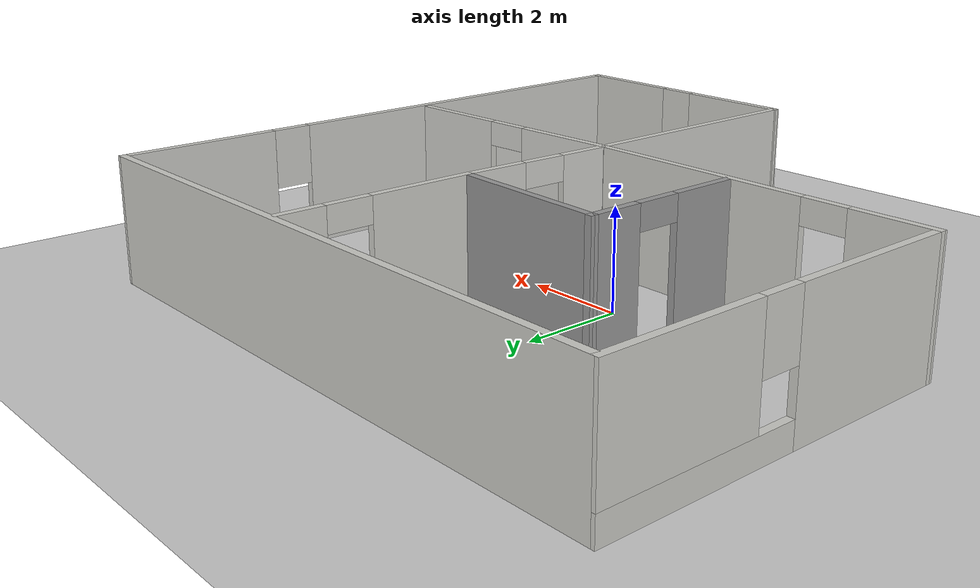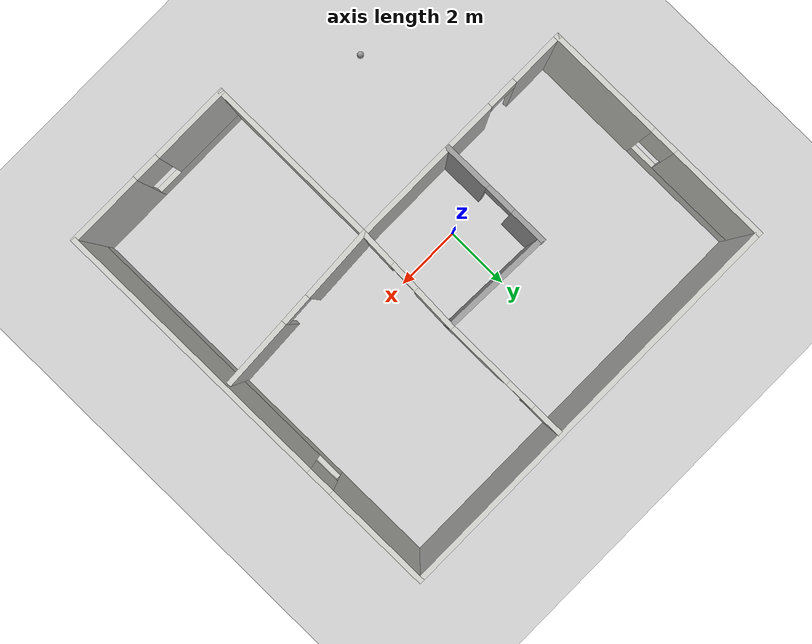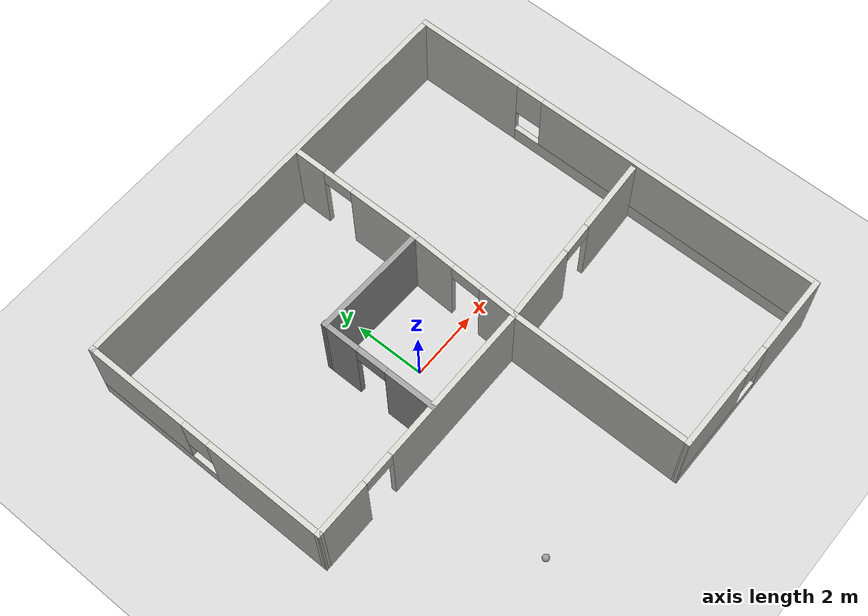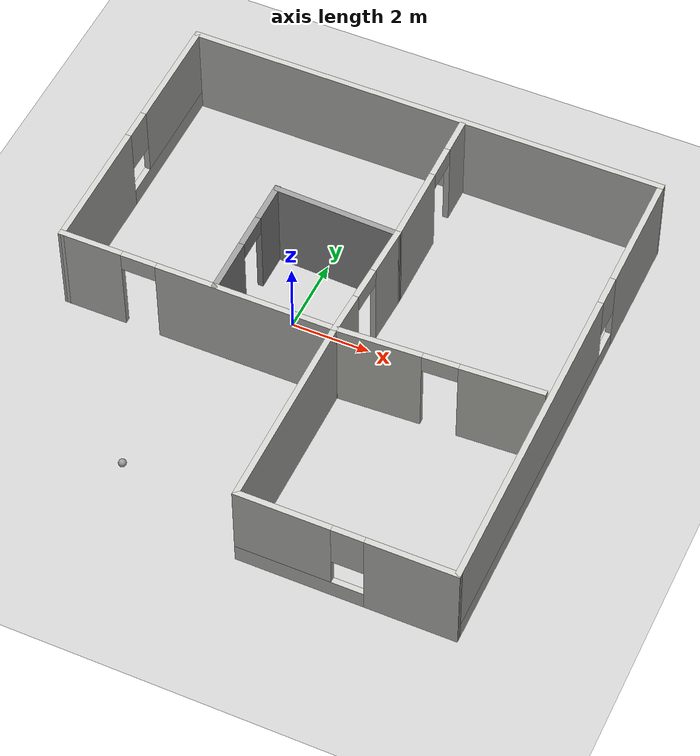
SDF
<sdf version="1.7">
 <world name="default">
  <light name="sun" type="directional">
   <pose>0 0 10 0 -0 0</pose>
   <diffuse>0.8 0.8 0.8 1</diffuse>
   <specular>0.2 0.2 0.2 1</specular>
   <attenuation>
    <range>1000</range>
    <constant>0.9</constant>
    <linear>0.01</linear>
    <quadratic>0.001</quadratic>
   </attenuation>
   <direction>-0.5 0.1 -0.9</direction>
   <spot><inner_angle>0</inner_angle><outer_angle>0</outer_angle><falloff>0</falloff></spot>
  </light>
  <model name="ground_plane">
   <static>1</static>
   <link name="link">
    <collision name="collision">
     <geometry><plane><normal>0 0 1</normal><size>100 100</size></plane></geometry>
     <surface>
      <contact><collide_bitmask>65535</collide_bitmask></contact>
      <friction><ode><mu>100</mu><mu2>50</mu2></ode></friction>
     </surface>
    </collision>
    <visual name="visual">
     <cast_shadows>0</cast_shadows>
     <geometry><plane><normal>0 0 1</normal><size>100 100</size></plane></geometry>
     <material>
      <script><uri>file://media/materials/scripts/gazebo.material</uri><name>Gazebo/Grey</name></script>
     </material>
    </visual>
   </link>
  </model>
  <gravity>0 0 -9.8</gravity>
  <magnetic_field>6e-06 2.3e-05 -4.2e-05</magnetic_field>
  <atmosphere type="adiabatic"/>
  <physics type="ode">
   <max_step_size>0.001</max_step_size>
   <real_time_factor>1</real_time_factor>
   <real_time_update_rate>1000</real_time_update_rate>
  </physics>
  <scene><ambient>0.4 0.4 0.4 1</ambient><background>0.7 0.7 0.7 1</background><shadows>1</shadows></scene>
  <spherical_coordinates>
   <surface_model>EARTH_WGS84</surface_model>
   <latitude_deg>0</latitude_deg>
   <longitude_deg>0</longitude_deg>
   <elevation>0</elevation>
   <heading_deg>0</heading_deg>
  </spherical_coordinates>
  <model name="Appt">
   <pose>0.93929 -0.505401 0 0 -0 0</pose>
   <link name="Wall_10">
    <pose>-6.20936 2.58411 0 0 -0 1.57018</pose>
    <visual name="Wall_10_Visual_0">
     <pose>-1.92753 0 1.25 0 -0 0</pose>
     <geometry><box><size>3.50674 0.15 2.5</size></box></geometry>
     <material>
      <script><uri>file://media/materials/scripts/gazebo.material</uri><name>Gazebo/CeilingTiled</name></script>
      <ambient>1 1 1 1</ambient>
     </material>
     <meta><layer>0</layer></meta>
    </visual>
    <collision name="Wall_10_Collision_0">
     <geometry><box><size>3.50674 0.15 2.5</size></box></geometry>
     <pose>-1.92753 0 1.25 0 -0 0</pose>
    </collision>
    <visual name="Wall_10_Visual_1">
     <pose>1.75337 0 0.25 0 -0 0</pose>
     <geometry><box><size>3.85506 0.15 0.5</size></box></geometry>
     <material>
      <script><uri>file://media/materials/scripts/gazebo.material</uri><name>Gazebo/CeilingTiled</name></script>
      <ambient>1 1 1 1</ambient>
     </material>
     <meta><layer>0</layer></meta>
    </visual>
    <collision name="Wall_10_Collision_1">
     <geometry><box><size>3.85506 0.15 0.5</size></box></geometry>
     <pose>1.75337 0 0.25 0 -0 0</pose>
    </collision>
    <visual name="Wall_10_Visual_2">
     <pose>2.15337 0 1.5 0 -0 0</pose>
     <geometry><box><size>3.05506 0.15 2</size></box></geometry>
     <material>
      <script><uri>file://media/materials/scripts/gazebo.material</uri><name>Gazebo/CeilingTiled</name></script>
      <ambient>1 1 1 1</ambient>
     </material>
     <meta><layer>0</layer></meta>
    </visual>
    <collision name="Wall_10_Collision_2">
     <geometry><box><size>3.05506 0.15 2</size></box></geometry>
     <pose>2.15337 0 1.5 0 -0 0</pose>
    </collision>
    <visual name="Wall_10_Visual_3">
     <pose>0.225842 0 1.9 0 -0 0</pose>
     <geometry><box><size>0.8 0.15 1.2</size></box></geometry>
     <material>
      <script><uri>file://media/materials/scripts/gazebo.material</uri><name>Gazebo/CeilingTiled</name></script>
      <ambient>1 1 1 1</ambient>
     </material>
     <meta><layer>0</layer></meta>
    </visual>
    <collision name="Wall_10_Collision_3">
     <geometry><box><size>0.8 0.15 1.2</size></box></geometry>
     <pose>0.225842 0 1.9 0 -0 0</pose>
    </collision>
   </link>
   <link name="Wall_13">
    <pose>1.02161 4.14402 0 0 0 -1.5708</pose>
    <visual name="Wall_13_Visual_0">
     <pose>-1.52209 0 1.25 0 -0 0</pose>
     <geometry><box><size>0.955813 0.15 2.5</size></box></geometry>
     <material>
      <script><uri>file://media/materials/scripts/gazebo.material</uri><name>Gazebo/CeilingTiled</name></script>
      <ambient>1 1 1 1</ambient>
     </material>
     <meta><layer>0</layer></meta>
    </visual>
    <collision name="Wall_13_Collision_0">
     <geometry><box><size>0.955813 0.15 2.5</size></box></geometry>
     <pose>-1.52209 0 1.25 0 -0 0</pose>
    </collision>
    <visual name="Wall_13_Visual_1">
     <pose>0.927906 0 1.25 0 -0 0</pose>
     <geometry><box><size>2.14419 0.15 2.5</size></box></geometry>
     <material>
      <script><uri>file://media/materials/scripts/gazebo.material</uri><name>Gazebo/CeilingTiled</name></script>
      <ambient>1 1 1 1</ambient>
     </material>
     <meta><layer>0</layer></meta>
    </visual>
    <collision name="Wall_13_Collision_1">
     <geometry><box><size>2.14419 0.15 2.5</size></box></geometry>
     <pose>0.927906 0 1.25 0 -0 0</pose>
    </collision>
    <visual name="Wall_13_Visual_2">
     <pose>-0.594187 0 2.25 0 -0 0</pose>
     <geometry><box><size>0.9 0.15 0.5</size></box></geometry>
     <material>
      <script><uri>file://media/materials/scripts/gazebo.material</uri><name>Gazebo/CeilingTiled</name></script>
      <ambient>1 1 1 1</ambient>
     </material>
     <meta><layer>0</layer></meta>
    </visual>
    <collision name="Wall_13_Collision_2">
     <geometry><box><size>0.9 0.15 0.5</size></box></geometry>
     <pose>-0.594187 0 2.25 0 -0 0</pose>
    </collision>
   </link>
   <link name="Wall_14">
    <collision name="Wall_14_Collision">
     <geometry><box><size>3.36614 0.15 2.5</size></box></geometry>
     <pose>0 0 1.25 0 -0 0</pose>
    </collision>
    <visual name="Wall_14_Visual">
     <pose>0 0 1.25 0 -0 0</pose>
     <geometry><box><size>3.36614 0.15 2.5</size></box></geometry>
     <material>
      <script><uri>file://media/materials/scripts/gazebo.material</uri><name>Gazebo/Grey</name></script>
      <ambient>1 1 1 1</ambient>
     </material>
     <meta><layer>0</layer></meta>
    </visual>
    <pose>-0.585241 2.27588 0 0 -0 3.10623</pose>
   </link>
   <link name="Wall_15">
    <pose>-2.19371 0.673077 0 0 0 -1.57177</pose>
    <visual name="Wall_15_Visual_0">
     <pose>-1.18829 0 1.25 0 -0 0</pose>
     <geometry><box><size>1.11546 0.15 2.5</size></box></geometry>
     <material>
      <script><uri>file://media/materials/scripts/gazebo.material</uri><name>Gazebo/Grey</name></script>
      <ambient>1 1 1 1</ambient>
     </material>
     <meta><layer>0</layer></meta>
    </visual>
    <collision name="Wall_15_Collision_0">
     <geometry><box><size>1.11546 0.15 2.5</size></box></geometry>
     <pose>-1.18829 0 1.25 0 -0 0</pose>
    </collision>
    <visual name="Wall_15_Visual_1">
     <pose>1.00773 0 1.25 0 -0 0</pose>
     <geometry><box><size>1.47659 0.15 2.5</size></box></geometry>
     <material>
      <script><uri>file://media/materials/scripts/gazebo.material</uri><name>Gazebo/Grey</name></script>
      <ambient>1 1 1 1</ambient>
     </material>
     <meta><layer>0</layer></meta>
    </visual>
    <collision name="Wall_15_Collision_1">
     <geometry><box><size>1.47659 0.15 2.5</size></box></geometry>
     <pose>1.00773 0 1.25 0 -0 0</pose>
    </collision>
    <visual name="Wall_15_Visual_2">
     <pose>-0.180563 0 2.25 0 -0 0</pose>
     <geometry><box><size>0.9 0.15 0.5</size></box></geometry>
     <material>
      <script><uri>file://media/materials/scripts/gazebo.material</uri><name>Gazebo/Grey</name></script>
      <ambient>1 1 1 1</ambient>
     </material>
     <meta><layer>0</layer></meta>
    </visual>
    <collision name="Wall_15_Collision_2">
     <geometry><box><size>0.9 0.15 0.5</size></box></geometry>
     <pose>-0.180563 0 2.25 0 -0 0</pose>
    </collision>
   </link>
   <link name="Wall_17">
    <pose>0.955011 0.598616 0 0 -0 1.52972</pose>
    <visual name="Wall_17_Visual_0">
     <pose>-1.12377 0 1.25 0 -0 0</pose>
     <geometry><box><size>1.146 0.15 2.5</size></box></geometry>
     <material>
      <script><uri>file://media/materials/scripts/gazebo.material</uri><name>Gazebo/CeilingTiled</name></script>
      <ambient>1 1 1 1</ambient>
     </material>
     <meta><layer>0</layer></meta>
    </visual>
    <collision name="Wall_17_Collision_0">
     <geometry><box><size>1.146 0.15 2.5</size></box></geometry>
     <pose>-1.12377 0 1.25 0 -0 0</pose>
    </collision>
    <visual name="Wall_17_Visual_1">
     <pose>1.023 0 1.25 0 -0 0</pose>
     <geometry><box><size>1.34755 0.15 2.5</size></box></geometry>
     <material>
      <script><uri>file://media/materials/scripts/gazebo.material</uri><name>Gazebo/CeilingTiled</name></script>
      <ambient>1 1 1 1</ambient>
     </material>
     <meta><layer>0</layer></meta>
    </visual>
    <collision name="Wall_17_Collision_1">
     <geometry><box><size>1.34755 0.15 2.5</size></box></geometry>
     <pose>1.023 0 1.25 0 -0 0</pose>
    </collision>
    <visual name="Wall_17_Visual_2">
     <pose>-0.100773 0 2.25 0 -0 0</pose>
     <geometry><box><size>0.9 0.15 0.5</size></box></geometry>
     <material>
      <script><uri>file://media/materials/scripts/gazebo.material</uri><name>Gazebo/CeilingTiled</name></script>
      <ambient>1 1 1 1</ambient>
     </material>
     <meta><layer>0</layer></meta>
    </visual>
    <collision name="Wall_17_Collision_2">
     <geometry><box><size>0.9 0.15 0.5</size></box></geometry>
     <pose>-0.100773 0 2.25 0 -0 0</pose>
    </collision>
   </link>
   <link name="Wall_19">
    <pose>3.44003 -0.90077 0 0 -0 0.047394</pose>
    <visual name="Wall_19_Visual_0">
     <pose>-1.50963 0 1.25 0 -0 0</pose>
     <geometry><box><size>2.23971 0.15 2.5</size></box></geometry>
     <material>
      <script><uri>file://media/materials/scripts/gazebo.material</uri><name>Gazebo/CeilingTiled</name></script>
      <ambient>1 1 1 1</ambient>
     </material>
     <meta><layer>0</layer></meta>
    </visual>
    <collision name="Wall_19_Collision_0">
     <geometry><box><size>2.23971 0.15 2.5</size></box></geometry>
     <pose>-1.50963 0 1.25 0 -0 0</pose>
    </collision>
    <visual name="Wall_19_Visual_1">
     <pose>1.56985 0 1.25 0 -0 0</pose>
     <geometry><box><size>2.11927 0.15 2.5</size></box></geometry>
     <material>
      <script><uri>file://media/materials/scripts/gazebo.material</uri><name>Gazebo/CeilingTiled</name></script>
      <ambient>1 1 1 1</ambient>
     </material>
     <meta><layer>0</layer></meta>
    </visual>
    <collision name="Wall_19_Collision_1">
     <geometry><box><size>2.11927 0.15 2.5</size></box></geometry>
     <pose>1.56985 0 1.25 0 -0 0</pose>
    </collision>
    <visual name="Wall_19_Visual_2">
     <pose>0.060219 0 2.25 0 -0 0</pose>
     <geometry><box><size>0.9 0.15 0.5</size></box></geometry>
     <material>
      <script><uri>file://media/materials/scripts/gazebo.material</uri><name>Gazebo/CeilingTiled</name></script>
      <ambient>1 1 1 1</ambient>
     </material>
     <meta><layer>0</layer></meta>
    </visual>
    <collision name="Wall_19_Collision_2">
     <geometry><box><size>0.9 0.15 0.5</size></box></geometry>
     <pose>0.060219 0 2.25 0 -0 0</pose>
    </collision>
   </link>
   <link name="Wall_5">
    <collision name="Wall_5_Collision">
     <geometry><box><size>12.5 0.15 2.5</size></box></geometry>
     <pose>0 0 1.25 0 -0 0</pose>
    </collision>
    <visual name="Wall_5_Visual">
     <pose>0 0 1.25 0 -0 0</pose>
     <geometry><box><size>12.5 0.15 2.5</size></box></geometry>
     <material>
      <script><uri>file://media/materials/scripts/gazebo.material</uri><name>Gazebo/CeilingTiled</name></script>
      <ambient>1 1 1 1</ambient>
     </material>
     <meta><layer>0</layer></meta>
    </visual>
    <pose>-0.001876 6.19001 0 0 -0 0</pose>
   </link>
   <link name="Wall_6">
    <pose>6.19226 0.015006 0 0 0 -1.5677</pose>
    <visual name="Wall_6_Visual_0">
     <pose>-4.62763 0 1.25 0 -0 0</pose>
     <geometry><box><size>3.24479 0.15 2.5</size></box></geometry>
     <material>
      <script><uri>file://media/materials/scripts/gazebo.material</uri><name>Gazebo/CeilingTiled</name></script>
      <ambient>1 1 1 1</ambient>
     </material>
     <meta><layer>0</layer></meta>
    </visual>
    <collision name="Wall_6_Collision_0">
     <geometry><box><size>3.24479 0.15 2.5</size></box></geometry>
     <pose>-4.62763 0 1.25 0 -0 0</pose>
    </collision>
    <visual name="Wall_6_Visual_1">
     <pose>1.6224 0 0.25 0 -0 0</pose>
     <geometry><box><size>9.25526 0.15 0.5</size></box></geometry>
     <material>
      <script><uri>file://media/materials/scripts/gazebo.material</uri><name>Gazebo/CeilingTiled</name></script>
      <ambient>1 1 1 1</ambient>
     </material>
     <meta><layer>0</layer></meta>
    </visual>
    <collision name="Wall_6_Collision_1">
     <geometry><box><size>9.25526 0.15 0.5</size></box></geometry>
     <pose>1.6224 0 0.25 0 -0 0</pose>
    </collision>
    <visual name="Wall_6_Visual_2">
     <pose>2.0224 0 1.5 0 -0 0</pose>
     <geometry><box><size>8.45527 0.15 2</size></box></geometry>
     <material>
      <script><uri>file://media/materials/scripts/gazebo.material</uri><name>Gazebo/CeilingTiled</name></script>
      <ambient>1 1 1 1</ambient>
     </material>
     <meta><layer>0</layer></meta>
    </visual>
    <collision name="Wall_6_Collision_2">
     <geometry><box><size>8.45527 0.15 2</size></box></geometry>
     <pose>2.0224 0 1.5 0 -0 0</pose>
    </collision>
    <visual name="Wall_6_Visual_3">
     <pose>-2.60523 0 1.9 0 -0 0</pose>
     <geometry><box><size>0.8 0.15 1.2</size></box></geometry>
     <material>
      <script><uri>file://media/materials/scripts/gazebo.material</uri><name>Gazebo/CeilingTiled</name></script>
      <ambient>1 1 1 1</ambient>
     </material>
     <meta><layer>0</layer></meta>
    </visual>
    <collision name="Wall_6_Collision_3">
     <geometry><box><size>0.8 0.15 1.2</size></box></geometry>
     <pose>-2.60523 0 1.9 0 -0 0</pose>
    </collision>
   </link>
   <link name="Wall_7">
    <pose>3.5364 -6.19024 0 0 -0 3.14159</pose>
    <visual name="Wall_7_Visual_0">
     <pose>-1.60305 0 1.25 0 -0 0</pose>
     <geometry><box><size>2.2939 0.15 2.5</size></box></geometry>
     <material>
      <script><uri>file://media/materials/scripts/gazebo.material</uri><name>Gazebo/CeilingTiled</name></script>
      <ambient>1 1 1 1</ambient>
     </material>
     <meta><layer>0</layer></meta>
    </visual>
    <collision name="Wall_7_Collision_0">
     <geometry><box><size>2.2939 0.15 2.5</size></box></geometry>
     <pose>-1.60305 0 1.25 0 -0 0</pose>
    </collision>
    <visual name="Wall_7_Visual_1">
     <pose>1.14695 0 0.25 0 -0 0</pose>
     <geometry><box><size>3.2061 0.15 0.5</size></box></geometry>
     <material>
      <script><uri>file://media/materials/scripts/gazebo.material</uri><name>Gazebo/CeilingTiled</name></script>
      <ambient>1 1 1 1</ambient>
     </material>
     <meta><layer>0</layer></meta>
    </visual>
    <collision name="Wall_7_Collision_1">
     <geometry><box><size>3.2061 0.15 0.5</size></box></geometry>
     <pose>1.14695 0 0.25 0 -0 0</pose>
    </collision>
    <visual name="Wall_7_Visual_2">
     <pose>1.54695 0 1.5 0 -0 0</pose>
     <geometry><box><size>2.4061 0.15 2</size></box></geometry>
     <material>
      <script><uri>file://media/materials/scripts/gazebo.material</uri><name>Gazebo/CeilingTiled</name></script>
      <ambient>1 1 1 1</ambient>
     </material>
     <meta><layer>0</layer></meta>
    </visual>
    <collision name="Wall_7_Collision_2">
     <geometry><box><size>2.4061 0.15 2</size></box></geometry>
     <pose>1.54695 0 1.5 0 -0 0</pose>
    </collision>
    <visual name="Wall_7_Visual_3">
     <pose>-0.056097 0 1.9 0 -0 0</pose>
     <geometry><box><size>0.8 0.15 1.2</size></box></geometry>
     <material>
      <script><uri>file://media/materials/scripts/gazebo.material</uri><name>Gazebo/CeilingTiled</name></script>
      <ambient>1 1 1 1</ambient>
     </material>
     <meta><layer>0</layer></meta>
    </visual>
    <collision name="Wall_7_Collision_3">
     <geometry><box><size>0.8 0.15 1.2</size></box></geometry>
     <pose>-0.056097 0 1.9 0 -0 0</pose>
    </collision>
   </link>
   <link name="Wall_8">
    <collision name="Wall_8_Collision">
     <geometry><box><size>5.28827 0.15 2.5</size></box></geometry>
     <pose>0 0 1.25 0 -0 0</pose>
    </collision>
    <visual name="Wall_8_Visual">
     <pose>0 0 1.25 0 -0 0</pose>
     <geometry><box><size>5.28827 0.15 2.5</size></box></geometry>
     <material>
      <script><uri>file://media/materials/scripts/gazebo.material</uri><name>Gazebo/CeilingTiled</name></script>
      <ambient>1 1 1 1</ambient>
     </material>
     <meta><layer>0</layer></meta>
    </visual>
    <pose>0.874908 -3.59089 0 0 -0 1.56554</pose>
   </link>
   <link name="Wall_9">
    <pose>-2.66159 -1.02179 0 0 -0 3.14159</pose>
    <visual name="Wall_9_Visual_0">
     <pose>-1.27921 0 1.25 0 -0 0</pose>
     <geometry><box><size>4.69157 0.15 2.5</size></box></geometry>
     <material>
      <script><uri>file://media/materials/scripts/gazebo.material</uri><name>Gazebo/CeilingTiled</name></script>
      <ambient>1 1 1 1</ambient>
     </material>
     <meta><layer>0</layer></meta>
    </visual>
    <collision name="Wall_9_Collision_0">
     <geometry><box><size>4.69157 0.15 2.5</size></box></geometry>
     <pose>-1.27921 0 1.25 0 -0 0</pose>
    </collision>
    <visual name="Wall_9_Visual_1">
     <pose>2.79579 0 1.25 0 -0 0</pose>
     <geometry><box><size>1.65843 0.15 2.5</size></box></geometry>
     <material>
      <script><uri>file://media/materials/scripts/gazebo.material</uri><name>Gazebo/CeilingTiled</name></script>
      <ambient>1 1 1 1</ambient>
     </material>
     <meta><layer>0</layer></meta>
    </visual>
    <collision name="Wall_9_Collision_1">
     <geometry><box><size>1.65843 0.15 2.5</size></box></geometry>
     <pose>2.79579 0 1.25 0 -0 0</pose>
    </collision>
    <visual name="Wall_9_Visual_2">
     <pose>1.51657 0 2.25 0 -0 0</pose>
     <geometry><box><size>0.9 0.15 0.5</size></box></geometry>
     <material>
      <script><uri>file://media/materials/scripts/gazebo.material</uri><name>Gazebo/CeilingTiled</name></script>
      <ambient>1 1 1 1</ambient>
     </material>
     <meta><layer>0</layer></meta>
    </visual>
    <collision name="Wall_9_Collision_2">
     <geometry><box><size>0.9 0.15 0.5</size></box></geometry>
     <pose>1.51657 0 2.25 0 -0 0</pose>
    </collision>
   </link>
   <static>1</static>
  </model>
  <model name="my_ball">
   <link name="link_0">
    <inertial>
     <mass>1</mass>
     <inertia><ixx>0.1</ixx><ixy>0</ixy><ixz>0</ixz><iyy>0.1</iyy><iyz>0</iyz><izz>0.1</izz></inertia>
    </inertial>
    <visual name="visual">
     <geometry><sphere><radius>0.1</radius></sphere></geometry>
     <material>
      <lighting>1</lighting>
      <script><uri>file://media/materials/scripts/gazebo.material</uri><name>Gazebo/Grey</name></script>
      <ambient>1 1 1 1</ambient>
      <diffuse>1 1 1 1</diffuse>
      <specular>1 1 1 1</specular>
      <emissive>1 1 1 1</emissive>
      <shader type="vertex"><normal_map>__default__</normal_map></shader>
     </material>
    </visual>
    <collision name="collision">
     <geometry><sphere><radius>0.1</radius></sphere></geometry>
     <surface>
      <friction>
       <ode><mu>1</mu><mu2>1</mu2><fdir1>0 0 0</fdir1><slip1>0</slip1><slip2>0</slip2></ode>
       <torsional>
        <coefficient>1</coefficient>
        <patch_radius>0</patch_radius>
        <surface_radius>0</surface_radius>
        <use_patch_radius>1</use_patch_radius>
        <ode><slip>0</slip></ode>
       </torsional>
      </friction>
      <bounce><restitution_coefficient>0</restitution_coefficient><threshold>1e+06</threshold></bounce>
      <contact>
       <collide_without_contact>0</collide_without_contact>
       <collide_without_contact_bitmask>1</collide_without_contact_bitmask>
       <collide_bitmask>1</collide_bitmask>
       <ode>
        <soft_cfm>0</soft_cfm>
        <soft_erp>0.2</soft_erp>
        <kp>1e+13</kp>
        <kd>1</kd>
        <max_vel>0.01</max_vel>
        <min_depth>0</min_depth>
       </ode>
       <bullet>
        <split_impulse>1</split_impulse>
        <split_impulse_penetration_threshold>-0.01</split_impulse_penetration_threshold>
        <soft_cfm>0</soft_cfm>
        <soft_erp>0.2</soft_erp>
        <kp>1e+13</kp>
        <kd>1</kd>
       </bullet>
      </contact>
     </surface>
    </collision>
   </link>
   <static>0</static>
   <pose>-1.80985 -5.46382 0.1 0 -0 0</pose>
  </model>
 </world>
</sdf>
